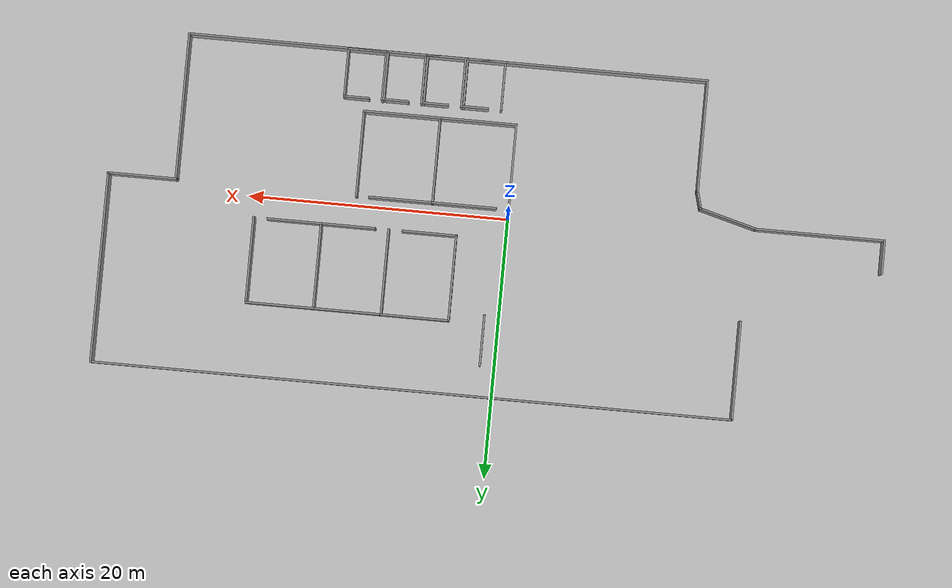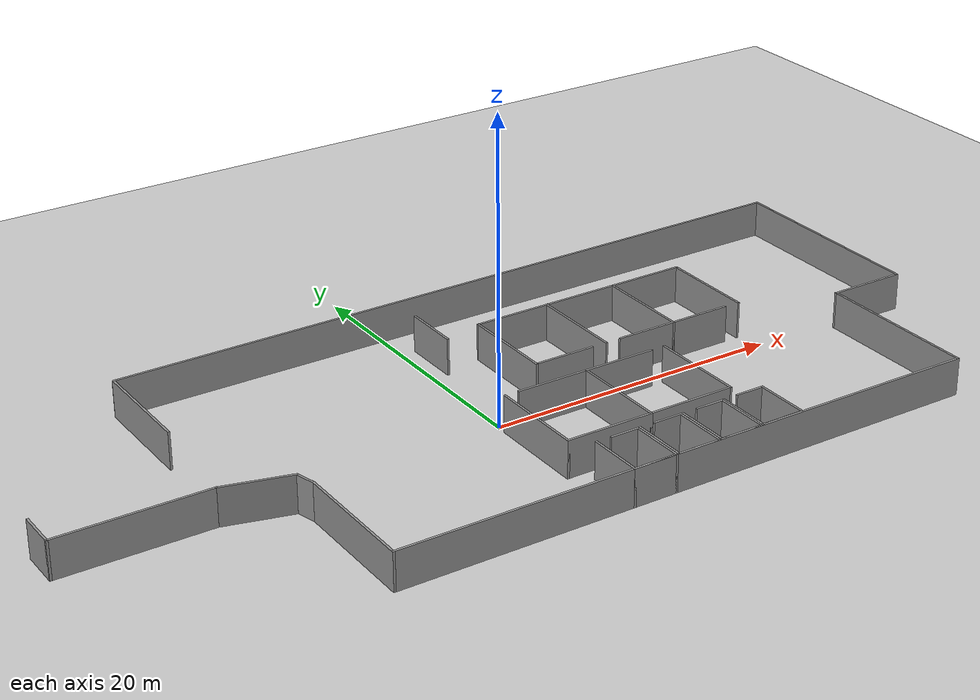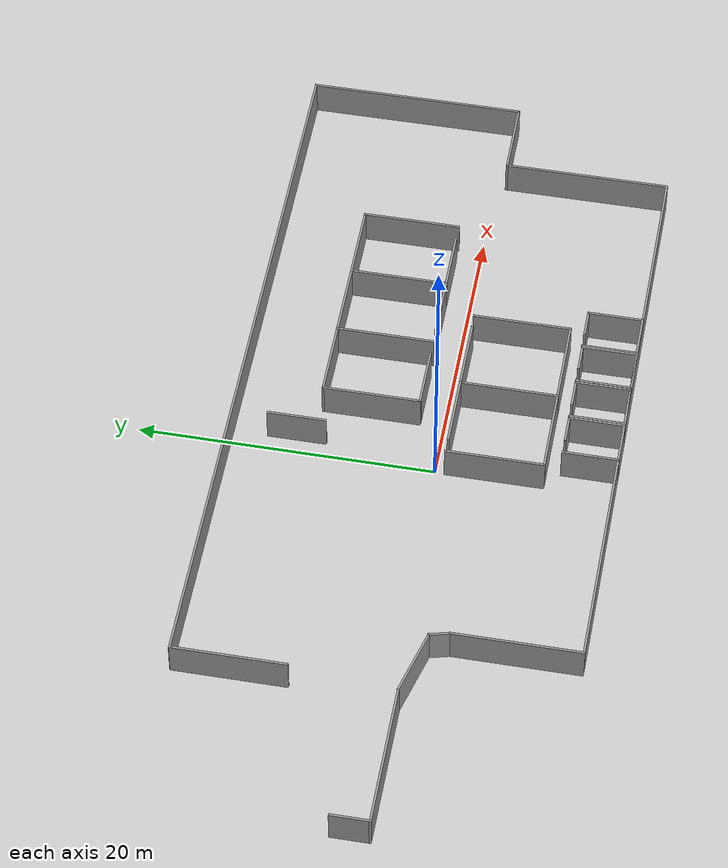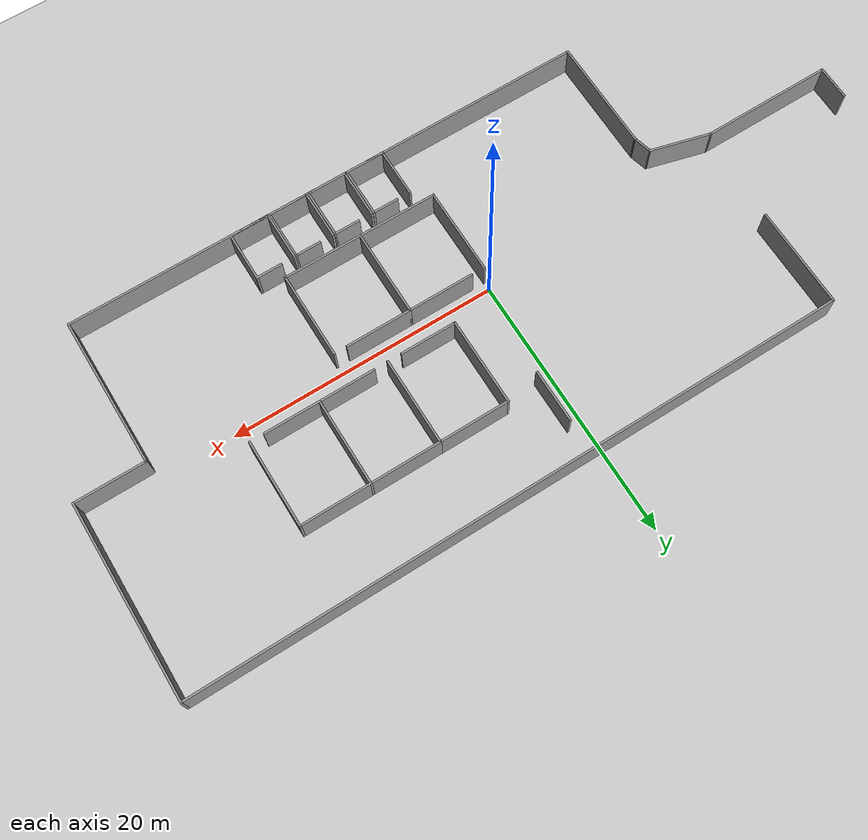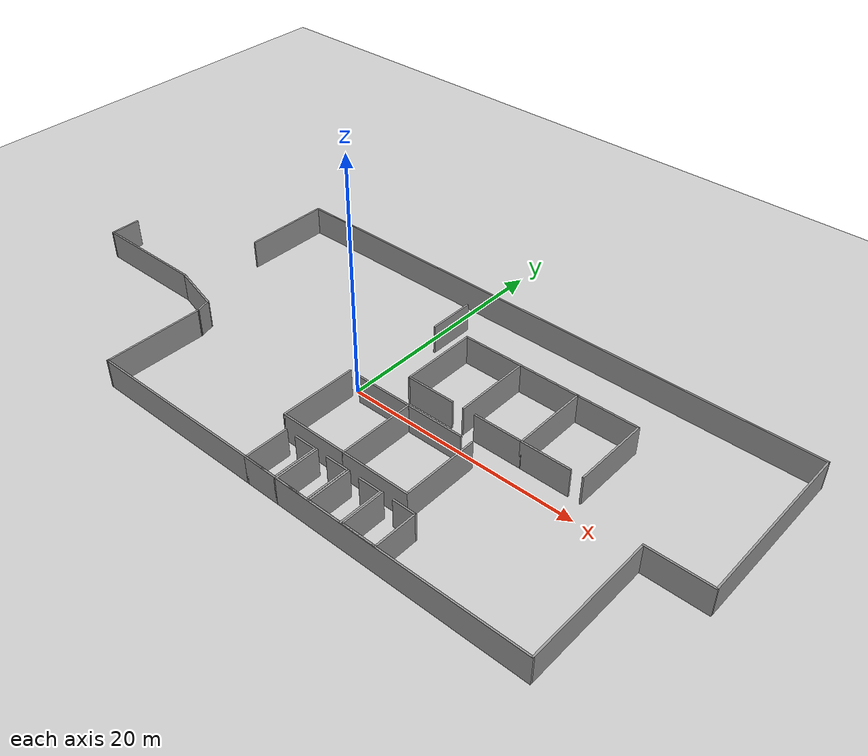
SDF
<sdf version="1.6">
 <world name="default">
  <model name="ground_plane">
   <static>1</static>
   <link name="link">
    <collision name="collision">
     <geometry><plane><normal>0 0 1</normal><size>100 100</size></plane></geometry>
     <surface><friction><ode><mu>100</mu><mu2>50</mu2></ode></friction></surface>
    </collision>
    <visual name="visual">
     <cast_shadows>0</cast_shadows>
     <geometry><plane><normal>0 0 1</normal><size>100 100</size></plane></geometry>
     <material>
      <script><uri>file://media/materials/scripts/gazebo.material</uri><name>Gazebo/Grey</name></script>
     </material>
    </visual>
   </link>
  </model>
  <model name="EEFloor4">
   <link name="Wall_0">
    <pose>-19.3918 9.08232 0 0 -0 1.5708</pose>
    <inertial>
     <inertia><ixx>0</ixx><ixy>0</ixy><ixz>0</ixz><iyy>0</iyy><iyz>0</iyz><izz>0</izz></inertia>
     <mass>0</mass>
    </inertial>
    <visual name="Wall_0_Visual">
     <pose>0 0 1.25 0 -0 0</pose>
     <geometry><box><size>7.65575 0.15 2.5</size></box></geometry>
     <material>
      <script><uri>file://media/materials/scripts/gazebo.material</uri><name>Gazebo/Grey</name></script>
      <ambient>1 1 1 1</ambient>
      <shader type="pixel"/>
     </material>
     <meta><layer>0</layer></meta>
    </visual>
    <collision name="Wall_0_Collision">
     <pose>0 0 1.25 0 -0 0</pose>
     <geometry><box><size>7.65575 0.15 2.5</size></box></geometry>
     <surface>
      <friction>
       <ode><mu>1</mu><mu2>1</mu2><fdir1>0 0 0</fdir1><slip1>0</slip1><slip2>0</slip2></ode>
       <torsional>
        <coefficient>1</coefficient>
        <patch_radius>0</patch_radius>
        <surface_radius>0</surface_radius>
        <use_patch_radius>1</use_patch_radius>
        <ode><slip>0</slip></ode>
       </torsional>
      </friction>
      <bounce><restitution_coefficient>0</restitution_coefficient><threshold>1e+06</threshold></bounce>
      <contact>
       <collide_without_contact>0</collide_without_contact>
       <collide_without_contact_bitmask>1</collide_without_contact_bitmask>
       <collide_bitmask>1</collide_bitmask>
       <ode>
        <soft_cfm>0</soft_cfm>
        <soft_erp>0.2</soft_erp>
        <kp>1e+13</kp>
        <kd>1</kd>
        <max_vel>0.01</max_vel>
        <min_depth>0</min_depth>
       </ode>
       <bullet>
        <split_impulse>1</split_impulse>
        <split_impulse_penetration_threshold>-0.01</split_impulse_penetration_threshold>
        <soft_cfm>0</soft_cfm>
        <soft_erp>0.2</soft_erp>
        <kp>1e+13</kp>
        <kd>1</kd>
       </bullet>
      </contact>
     </surface>
    </collision>
   </link>
   <link name="Wall_1">
    <pose>5.20325 12.852 0 0 -0 0</pose>
    <visual name="Wall_1_Visual">
     <pose>0 0 1.25 0 -0 0</pose>
     <geometry><box><size>49.34 0.15 2.5</size></box></geometry>
     <material>
      <script><uri>file://media/materials/scripts/gazebo.material</uri><name>Gazebo/Grey</name></script>
      <ambient>1 1 1 1</ambient>
      <shader type="pixel"/>
     </material>
     <meta><layer>0</layer></meta>
    </visual>
    <collision name="Wall_1_Collision">
     <pose>0 0 1.25 0 -0 0</pose>
     <geometry><box><size>49.34 0.15 2.5</size></box></geometry>
     <surface>
      <friction>
       <ode><mu>1</mu><mu2>1</mu2><fdir1>0 0 0</fdir1><slip1>0</slip1><slip2>0</slip2></ode>
       <torsional>
        <coefficient>1</coefficient>
        <patch_radius>0</patch_radius>
        <surface_radius>0</surface_radius>
        <use_patch_radius>1</use_patch_radius>
        <ode><slip>0</slip></ode>
       </torsional>
      </friction>
      <bounce><restitution_coefficient>0</restitution_coefficient><threshold>1e+06</threshold></bounce>
      <contact>
       <collide_without_contact>0</collide_without_contact>
       <collide_without_contact_bitmask>1</collide_without_contact_bitmask>
       <collide_bitmask>1</collide_bitmask>
       <ode>
        <soft_cfm>0</soft_cfm>
        <soft_erp>0.2</soft_erp>
        <kp>1e+13</kp>
        <kd>1</kd>
        <max_vel>0.01</max_vel>
        <min_depth>0</min_depth>
       </ode>
       <bullet>
        <split_impulse>1</split_impulse>
        <split_impulse_penetration_threshold>-0.01</split_impulse_penetration_threshold>
        <soft_cfm>0</soft_cfm>
        <soft_erp>0.2</soft_erp>
        <kp>1e+13</kp>
        <kd>1</kd>
       </bullet>
      </contact>
     </surface>
    </collision>
   </link>
   <link name="Wall_10">
    <pose>-29.7982 -0.602414 0 0 -0 1.5708</pose>
    <visual name="Wall_10_Visual">
     <pose>0 0 1.25 0 -0 0</pose>
     <geometry><box><size>2.667 0.15 2.5</size></box></geometry>
     <material>
      <script><uri>file://media/materials/scripts/gazebo.material</uri><name>Gazebo/Grey</name></script>
      <ambient>1 1 1 1</ambient>
      <shader type="pixel"/>
     </material>
     <meta><layer>0</layer></meta>
    </visual>
    <collision name="Wall_10_Collision">
     <pose>0 0 1.25 0 -0 0</pose>
     <geometry><box><size>2.667 0.15 2.5</size></box></geometry>
     <surface>
      <friction>
       <ode><mu>1</mu><mu2>1</mu2><fdir1>0 0 0</fdir1><slip1>0</slip1><slip2>0</slip2></ode>
       <torsional>
        <coefficient>1</coefficient>
        <patch_radius>0</patch_radius>
        <surface_radius>0</surface_radius>
        <use_patch_radius>1</use_patch_radius>
        <ode><slip>0</slip></ode>
       </torsional>
      </friction>
      <bounce><restitution_coefficient>0</restitution_coefficient><threshold>1e+06</threshold></bounce>
      <contact>
       <collide_without_contact>0</collide_without_contact>
       <collide_without_contact_bitmask>1</collide_without_contact_bitmask>
       <collide_bitmask>1</collide_bitmask>
       <ode>
        <soft_cfm>0</soft_cfm>
        <soft_erp>0.2</soft_erp>
        <kp>1e+13</kp>
        <kd>1</kd>
        <max_vel>0.01</max_vel>
        <min_depth>0</min_depth>
       </ode>
       <bullet>
        <split_impulse>1</split_impulse>
        <split_impulse_penetration_threshold>-0.01</split_impulse_penetration_threshold>
        <soft_cfm>0</soft_cfm>
        <soft_erp>0.2</soft_erp>
        <kp>1e+13</kp>
        <kd>1</kd>
       </bullet>
      </contact>
     </surface>
    </collision>
   </link>
   <link name="Wall_2">
    <pose>29.7982 5.5925 0 0 0 -1.5708</pose>
    <visual name="Wall_2_Visual">
     <pose>0 0 1.25 0 -0 0</pose>
     <geometry><box><size>14.669 0.15 2.5</size></box></geometry>
     <material>
      <script><uri>file://media/materials/scripts/gazebo.material</uri><name>Gazebo/Grey</name></script>
      <ambient>1 1 1 1</ambient>
      <shader type="pixel"/>
     </material>
     <meta><layer>0</layer></meta>
    </visual>
    <collision name="Wall_2_Collision">
     <pose>0 0 1.25 0 -0 0</pose>
     <geometry><box><size>14.669 0.15 2.5</size></box></geometry>
     <surface>
      <friction>
       <ode><mu>1</mu><mu2>1</mu2><fdir1>0 0 0</fdir1><slip1>0</slip1><slip2>0</slip2></ode>
       <torsional>
        <coefficient>1</coefficient>
        <patch_radius>0</patch_radius>
        <surface_radius>0</surface_radius>
        <use_patch_radius>1</use_patch_radius>
        <ode><slip>0</slip></ode>
       </torsional>
      </friction>
      <bounce><restitution_coefficient>0</restitution_coefficient><threshold>1e+06</threshold></bounce>
      <contact>
       <collide_without_contact>0</collide_without_contact>
       <collide_without_contact_bitmask>1</collide_without_contact_bitmask>
       <collide_bitmask>1</collide_bitmask>
       <ode>
        <soft_cfm>0</soft_cfm>
        <soft_erp>0.2</soft_erp>
        <kp>1e+13</kp>
        <kd>1</kd>
        <max_vel>0.01</max_vel>
        <min_depth>0</min_depth>
       </ode>
       <bullet>
        <split_impulse>1</split_impulse>
        <split_impulse_penetration_threshold>-0.01</split_impulse_penetration_threshold>
        <soft_cfm>0</soft_cfm>
        <soft_erp>0.2</soft_erp>
        <kp>1e+13</kp>
        <kd>1</kd>
       </bullet>
      </contact>
     </surface>
    </collision>
   </link>
   <link name="Wall_3">
    <pose>27.2062 -1.667 0 0 -0 3.14159</pose>
    <visual name="Wall_3_Visual">
     <pose>0 0 1.25 0 -0 0</pose>
     <geometry><box><size>5.334 0.15 2.5</size></box></geometry>
     <material>
      <script><uri>file://media/materials/scripts/gazebo.material</uri><name>Gazebo/Grey</name></script>
      <ambient>1 1 1 1</ambient>
      <shader type="pixel"/>
     </material>
     <meta><layer>0</layer></meta>
    </visual>
    <collision name="Wall_3_Collision">
     <pose>0 0 1.25 0 -0 0</pose>
     <geometry><box><size>5.334 0.15 2.5</size></box></geometry>
     <surface>
      <friction>
       <ode><mu>1</mu><mu2>1</mu2><fdir1>0 0 0</fdir1><slip1>0</slip1><slip2>0</slip2></ode>
       <torsional>
        <coefficient>1</coefficient>
        <patch_radius>0</patch_radius>
        <surface_radius>0</surface_radius>
        <use_patch_radius>1</use_patch_radius>
        <ode><slip>0</slip></ode>
       </torsional>
      </friction>
      <bounce><restitution_coefficient>0</restitution_coefficient><threshold>1e+06</threshold></bounce>
      <contact>
       <collide_without_contact>0</collide_without_contact>
       <collide_without_contact_bitmask>1</collide_without_contact_bitmask>
       <collide_bitmask>1</collide_bitmask>
       <ode>
        <soft_cfm>0</soft_cfm>
        <soft_erp>0.2</soft_erp>
        <kp>1e+13</kp>
        <kd>1</kd>
        <max_vel>0.01</max_vel>
        <min_depth>0</min_depth>
       </ode>
       <bullet>
        <split_impulse>1</split_impulse>
        <split_impulse_penetration_threshold>-0.01</split_impulse_penetration_threshold>
        <soft_cfm>0</soft_cfm>
        <soft_erp>0.2</soft_erp>
        <kp>1e+13</kp>
        <kd>1</kd>
       </bullet>
      </contact>
     </surface>
    </collision>
   </link>
   <link name="Wall_4">
    <pose>24.6142 -7.2595 0 0 0 -1.5708</pose>
    <visual name="Wall_4_Visual">
     <pose>0 0 1.25 0 -0 0</pose>
     <geometry><box><size>11.335 0.15 2.5</size></box></geometry>
     <material>
      <script><uri>file://media/materials/scripts/gazebo.material</uri><name>Gazebo/Grey</name></script>
      <ambient>1 1 1 1</ambient>
      <shader type="pixel"/>
     </material>
     <meta><layer>0</layer></meta>
    </visual>
    <collision name="Wall_4_Collision">
     <pose>0 0 1.25 0 -0 0</pose>
     <geometry><box><size>11.335 0.15 2.5</size></box></geometry>
     <surface>
      <friction>
       <ode><mu>1</mu><mu2>1</mu2><fdir1>0 0 0</fdir1><slip1>0</slip1><slip2>0</slip2></ode>
       <torsional>
        <coefficient>1</coefficient>
        <patch_radius>0</patch_radius>
        <surface_radius>0</surface_radius>
        <use_patch_radius>1</use_patch_radius>
        <ode><slip>0</slip></ode>
       </torsional>
      </friction>
      <bounce><restitution_coefficient>0</restitution_coefficient><threshold>1e+06</threshold></bounce>
      <contact>
       <collide_without_contact>0</collide_without_contact>
       <collide_without_contact_bitmask>1</collide_without_contact_bitmask>
       <collide_bitmask>1</collide_bitmask>
       <ode>
        <soft_cfm>0</soft_cfm>
        <soft_erp>0.2</soft_erp>
        <kp>1e+13</kp>
        <kd>1</kd>
        <max_vel>0.01</max_vel>
        <min_depth>0</min_depth>
       </ode>
       <bullet>
        <split_impulse>1</split_impulse>
        <split_impulse_penetration_threshold>-0.01</split_impulse_penetration_threshold>
        <soft_cfm>0</soft_cfm>
        <soft_erp>0.2</soft_erp>
        <kp>1e+13</kp>
        <kd>1</kd>
       </bullet>
      </contact>
     </surface>
    </collision>
   </link>
   <link name="Wall_5">
    <pose>4.68925 -12.852 0 0 -0 3.14159</pose>
    <visual name="Wall_5_Visual">
     <pose>0 0 1.25 0 -0 0</pose>
     <geometry><box><size>40 0.15 2.5</size></box></geometry>
     <material>
      <script><uri>file://media/materials/scripts/gazebo.material</uri><name>Gazebo/Grey</name></script>
      <ambient>1 1 1 1</ambient>
      <shader type="pixel"/>
     </material>
     <meta><layer>0</layer></meta>
    </visual>
    <collision name="Wall_5_Collision">
     <pose>0 0 1.25 0 -0 0</pose>
     <geometry><box><size>40 0.15 2.5</size></box></geometry>
     <surface>
      <friction>
       <ode><mu>1</mu><mu2>1</mu2><fdir1>0 0 0</fdir1><slip1>0</slip1><slip2>0</slip2></ode>
       <torsional>
        <coefficient>1</coefficient>
        <patch_radius>0</patch_radius>
        <surface_radius>0</surface_radius>
        <use_patch_radius>1</use_patch_radius>
        <ode><slip>0</slip></ode>
       </torsional>
      </friction>
      <bounce><restitution_coefficient>0</restitution_coefficient><threshold>1e+06</threshold></bounce>
      <contact>
       <collide_without_contact>0</collide_without_contact>
       <collide_without_contact_bitmask>1</collide_without_contact_bitmask>
       <collide_bitmask>1</collide_bitmask>
       <ode>
        <soft_cfm>0</soft_cfm>
        <soft_erp>0.2</soft_erp>
        <kp>1e+13</kp>
        <kd>1</kd>
        <max_vel>0.01</max_vel>
        <min_depth>0</min_depth>
       </ode>
       <bullet>
        <split_impulse>1</split_impulse>
        <split_impulse_penetration_threshold>-0.01</split_impulse_penetration_threshold>
        <soft_cfm>0</soft_cfm>
        <soft_erp>0.2</soft_erp>
        <kp>1e+13</kp>
        <kd>1</kd>
       </bullet>
      </contact>
     </surface>
    </collision>
   </link>
   <link name="Wall_6">
    <pose>-15.2358 -8.593 0 0 -0 1.5708</pose>
    <visual name="Wall_6_Visual">
     <pose>0 0 1.25 0 -0 0</pose>
     <geometry><box><size>8.668 0.15 2.5</size></box></geometry>
     <material>
      <script><uri>file://media/materials/scripts/gazebo.material</uri><name>Gazebo/Grey</name></script>
      <ambient>1 1 1 1</ambient>
      <shader type="pixel"/>
     </material>
     <meta><layer>0</layer></meta>
    </visual>
    <collision name="Wall_6_Collision">
     <pose>0 0 1.25 0 -0 0</pose>
     <geometry><box><size>8.668 0.15 2.5</size></box></geometry>
     <surface>
      <friction>
       <ode><mu>1</mu><mu2>1</mu2><fdir1>0 0 0</fdir1><slip1>0</slip1><slip2>0</slip2></ode>
       <torsional>
        <coefficient>1</coefficient>
        <patch_radius>0</patch_radius>
        <surface_radius>0</surface_radius>
        <use_patch_radius>1</use_patch_radius>
        <ode><slip>0</slip></ode>
       </torsional>
      </friction>
      <bounce><restitution_coefficient>0</restitution_coefficient><threshold>1e+06</threshold></bounce>
      <contact>
       <collide_without_contact>0</collide_without_contact>
       <collide_without_contact_bitmask>1</collide_without_contact_bitmask>
       <collide_bitmask>1</collide_bitmask>
       <ode>
        <soft_cfm>0</soft_cfm>
        <soft_erp>0.2</soft_erp>
        <kp>1e+13</kp>
        <kd>1</kd>
        <max_vel>0.01</max_vel>
        <min_depth>0</min_depth>
       </ode>
       <bullet>
        <split_impulse>1</split_impulse>
        <split_impulse_penetration_threshold>-0.01</split_impulse_penetration_threshold>
        <soft_cfm>0</soft_cfm>
        <soft_erp>0.2</soft_erp>
        <kp>1e+13</kp>
        <kd>1</kd>
       </bullet>
      </contact>
     </surface>
    </collision>
   </link>
   <link name="Wall_7">
    <pose>-15.4105 -3.682 0 0 -0 1.8326</pose>
    <visual name="Wall_7_Visual">
     <pose>0 0 1.25 0 -0 0</pose>
     <geometry><box><size>1.5 0.15 2.5</size></box></geometry>
     <material>
      <script><uri>file://media/materials/scripts/gazebo.material</uri><name>Gazebo/Grey</name></script>
      <ambient>1 1 1 1</ambient>
      <shader type="pixel"/>
     </material>
     <meta><layer>0</layer></meta>
    </visual>
    <collision name="Wall_7_Collision">
     <pose>0 0 1.25 0 -0 0</pose>
     <geometry><box><size>1.5 0.15 2.5</size></box></geometry>
     <surface>
      <friction>
       <ode><mu>1</mu><mu2>1</mu2><fdir1>0 0 0</fdir1><slip1>0</slip1><slip2>0</slip2></ode>
       <torsional>
        <coefficient>1</coefficient>
        <patch_radius>0</patch_radius>
        <surface_radius>0</surface_radius>
        <use_patch_radius>1</use_patch_radius>
        <ode><slip>0</slip></ode>
       </torsional>
      </friction>
      <bounce><restitution_coefficient>0</restitution_coefficient><threshold>1e+06</threshold></bounce>
      <contact>
       <collide_without_contact>0</collide_without_contact>
       <collide_without_contact_bitmask>1</collide_without_contact_bitmask>
       <collide_bitmask>1</collide_bitmask>
       <ode>
        <soft_cfm>0</soft_cfm>
        <soft_erp>0.2</soft_erp>
        <kp>1e+13</kp>
        <kd>1</kd>
        <max_vel>0.01</max_vel>
        <min_depth>0</min_depth>
       </ode>
       <bullet>
        <split_impulse>1</split_impulse>
        <split_impulse_penetration_threshold>-0.01</split_impulse_penetration_threshold>
        <soft_cfm>0</soft_cfm>
        <soft_erp>0.2</soft_erp>
        <kp>1e+13</kp>
        <kd>1</kd>
       </bullet>
      </contact>
     </surface>
    </collision>
   </link>
   <link name="Wall_8">
    <pose>-17.7667 -2.44546 0 0 -0 2.87979</pose>
    <visual name="Wall_8_Visual">
     <pose>0 0 1.25 0 -0 0</pose>
     <geometry><box><size>4.667 0.15 2.5</size></box></geometry>
     <material>
      <script><uri>file://media/materials/scripts/gazebo.material</uri><name>Gazebo/Grey</name></script>
      <ambient>1 1 1 1</ambient>
      <shader type="pixel"/>
     </material>
     <meta><layer>0</layer></meta>
    </visual>
    <collision name="Wall_8_Collision">
     <pose>0 0 1.25 0 -0 0</pose>
     <geometry><box><size>4.667 0.15 2.5</size></box></geometry>
     <surface>
      <friction>
       <ode><mu>1</mu><mu2>1</mu2><fdir1>0 0 0</fdir1><slip1>0</slip1><slip2>0</slip2></ode>
       <torsional>
        <coefficient>1</coefficient>
        <patch_radius>0</patch_radius>
        <surface_radius>0</surface_radius>
        <use_patch_radius>1</use_patch_radius>
        <ode><slip>0</slip></ode>
       </torsional>
      </friction>
      <bounce><restitution_coefficient>0</restitution_coefficient><threshold>1e+06</threshold></bounce>
      <contact>
       <collide_without_contact>0</collide_without_contact>
       <collide_without_contact_bitmask>1</collide_without_contact_bitmask>
       <collide_bitmask>1</collide_bitmask>
       <ode>
        <soft_cfm>0</soft_cfm>
        <soft_erp>0.2</soft_erp>
        <kp>1e+13</kp>
        <kd>1</kd>
        <max_vel>0.01</max_vel>
        <min_depth>0</min_depth>
       </ode>
       <bullet>
        <split_impulse>1</split_impulse>
        <split_impulse_penetration_threshold>-0.01</split_impulse_penetration_threshold>
        <soft_cfm>0</soft_cfm>
        <soft_erp>0.2</soft_erp>
        <kp>1e+13</kp>
        <kd>1</kd>
       </bullet>
      </contact>
     </surface>
    </collision>
   </link>
   <link name="Wall_9">
    <pose>-24.8732 -1.86091 0 0 -0 3.14159</pose>
    <visual name="Wall_9_Visual">
     <pose>0 0 1.25 0 -0 0</pose>
     <geometry><box><size>10 0.15 2.5</size></box></geometry>
     <material>
      <script><uri>file://media/materials/scripts/gazebo.material</uri><name>Gazebo/Grey</name></script>
      <ambient>1 1 1 1</ambient>
      <shader type="pixel"/>
     </material>
     <meta><layer>0</layer></meta>
    </visual>
    <collision name="Wall_9_Collision">
     <pose>0 0 1.25 0 -0 0</pose>
     <geometry><box><size>10 0.15 2.5</size></box></geometry>
     <surface>
      <friction>
       <ode><mu>1</mu><mu2>1</mu2><fdir1>0 0 0</fdir1><slip1>0</slip1><slip2>0</slip2></ode>
       <torsional>
        <coefficient>1</coefficient>
        <patch_radius>0</patch_radius>
        <surface_radius>0</surface_radius>
        <use_patch_radius>1</use_patch_radius>
        <ode><slip>0</slip></ode>
       </torsional>
      </friction>
      <bounce><restitution_coefficient>0</restitution_coefficient><threshold>1e+06</threshold></bounce>
      <contact>
       <collide_without_contact>0</collide_without_contact>
       <collide_without_contact_bitmask>1</collide_without_contact_bitmask>
       <collide_bitmask>1</collide_bitmask>
       <ode>
        <soft_cfm>0</soft_cfm>
        <soft_erp>0.2</soft_erp>
        <kp>1e+13</kp>
        <kd>1</kd>
        <max_vel>0.01</max_vel>
        <min_depth>0</min_depth>
       </ode>
       <bullet>
        <split_impulse>1</split_impulse>
        <split_impulse_penetration_threshold>-0.01</split_impulse_penetration_threshold>
        <soft_cfm>0</soft_cfm>
        <soft_erp>0.2</soft_erp>
        <kp>1e+13</kp>
        <kd>1</kd>
       </bullet>
      </contact>
     </surface>
    </collision>
   </link>
   <static>1</static>
   <pose>0.943488 0.961401 0 0 -0 0</pose>
  </model>
  <model name="410">
   <pose>11.578 4.95207 0 0 -0 0</pose>
   <link name="Wall_20">
    <collision name="Wall_20_Collision">
     <geometry><box><size>6.668 0.15 2.5</size></box></geometry>
     <pose>0 0 1.25 0 -0 0</pose>
    </collision>
    <visual name="Wall_20_Visual">
     <pose>0 0 1.25 0 -0 0</pose>
     <geometry><box><size>6.668 0.15 2.5</size></box></geometry>
     <material>
      <script><uri>file://media/materials/scripts/gazebo.material</uri><name>Gazebo/Grey</name></script>
      <ambient>1 1 1 1</ambient>
     </material>
     <meta><layer>0</layer></meta>
    </visual>
    <pose>-2.592 0 0 0 -0 1.5708</pose>
   </link>
   <link name="Wall_21">
    <collision name="Wall_21_Collision">
     <geometry><box><size>5.334 0.15 2.5</size></box></geometry>
     <pose>0 0 1.25 0 -0 0</pose>
    </collision>
    <visual name="Wall_21_Visual">
     <pose>0 0 1.25 0 -0 0</pose>
     <geometry><box><size>5.334 0.15 2.5</size></box></geometry>
     <material>
      <script><uri>file://media/materials/scripts/gazebo.material</uri><name>Gazebo/Grey</name></script>
      <ambient>1 1 1 1</ambient>
     </material>
     <meta><layer>0</layer></meta>
    </visual>
    <pose>-5.184 3.259 0 0 -0 3.14159</pose>
   </link>
   <link name="Wall_22">
    <collision name="Wall_22_Collision">
     <geometry><box><size>6.66854 0.15 2.5</size></box></geometry>
     <pose>0 0 1.25 0 -0 0</pose>
    </collision>
    <visual name="Wall_22_Visual">
     <pose>0 0 1.25 0 -0 0</pose>
     <geometry><box><size>6.66854 0.15 2.5</size></box></geometry>
     <material>
      <script><uri>file://media/materials/scripts/gazebo.material</uri><name>Gazebo/Grey</name></script>
      <ambient>1 1 1 1</ambient>
     </material>
     <meta><layer>0</layer></meta>
    </visual>
    <pose>-7.776 0 0 0 -0 -1.5708</pose>
   </link>
   <link name="Wall_24">
    <collision name="Wall_24_Collision">
     <geometry><box><size>5.334 0.15 2.5</size></box></geometry>
     <pose>0 0 1.25 0 -0 0</pose>
    </collision>
    <visual name="Wall_24_Visual">
     <pose>0 0 1.25 0 -0 0</pose>
     <geometry><box><size>5.334 0.15 2.5</size></box></geometry>
     <material>
      <script><uri>file://media/materials/scripts/gazebo.material</uri><name>Gazebo/Grey</name></script>
      <ambient>1 1 1 1</ambient>
     </material>
     <meta><layer>0</layer></meta>
    </visual>
    <pose>-0 3.259 0 0 -0 0</pose>
   </link>
   <link name="Wall_25">
    <collision name="Wall_25_Collision">
     <geometry><box><size>6.668 0.15 2.5</size></box></geometry>
     <pose>0 0 1.25 0 -0 0</pose>
    </collision>
    <visual name="Wall_25_Visual">
     <pose>0 0 1.25 0 -0 0</pose>
     <geometry><box><size>6.668 0.15 2.5</size></box></geometry>
     <material>
      <script><uri>file://media/materials/scripts/gazebo.material</uri><name>Gazebo/Grey</name></script>
      <ambient>1 1 1 1</ambient>
     </material>
     <meta><layer>0</layer></meta>
    </visual>
    <pose>2.592 0 0 0 -0 -1.5708</pose>
   </link>
   <link name="Wall_28">
    <collision name="Wall_28_Collision">
     <geometry><box><size>5.334 0.15 2.5</size></box></geometry>
     <pose>0 0 1.25 0 -0 0</pose>
    </collision>
    <visual name="Wall_28_Visual">
     <pose>0 0 1.25 0 -0 0</pose>
     <geometry><box><size>5.334 0.15 2.5</size></box></geometry>
     <material>
      <script><uri>file://media/materials/scripts/gazebo.material</uri><name>Gazebo/Grey</name></script>
      <ambient>1 1 1 1</ambient>
     </material>
     <meta><layer>0</layer></meta>
    </visual>
    <pose>5.184 3.259 0 0 -0 0</pose>
   </link>
   <link name="Wall_29">
    <collision name="Wall_29_Collision">
     <geometry><box><size>6.668 0.15 2.5</size></box></geometry>
     <pose>0 0 1.25 0 -0 0</pose>
    </collision>
    <visual name="Wall_29_Visual">
     <pose>0 0 1.25 0 -0 0</pose>
     <geometry><box><size>6.668 0.15 2.5</size></box></geometry>
     <material>
      <script><uri>file://media/materials/scripts/gazebo.material</uri><name>Gazebo/Grey</name></script>
      <ambient>1 1 1 1</ambient>
     </material>
     <meta><layer>0</layer></meta>
    </visual>
    <pose>7.776 0 0 0 -0 -1.5708</pose>
   </link>
   <link name="Wall_32">
    <collision name="Wall_32_Collision">
     <geometry><box><size>4.25 0.15 2.5</size></box></geometry>
     <pose>0 0 1.25 0 -0 0</pose>
    </collision>
    <visual name="Wall_32_Visual">
     <pose>0 0 1.25 0 -0 0</pose>
     <geometry><box><size>4.25 0.15 2.5</size></box></geometry>
     <material>
      <script><uri>file://media/materials/scripts/gazebo.material</uri><name>Gazebo/Grey</name></script>
      <ambient>1 1 1 1</ambient>
     </material>
     <meta><layer>0</layer></meta>
    </visual>
    <pose>-5.726 -3.259 0 0 -0 0</pose>
   </link>
   <link name="Wall_35">
    <collision name="Wall_35_Collision">
     <geometry><box><size>4.25 0.15 2.5</size></box></geometry>
     <pose>0 0 1.25 0 -0 0</pose>
    </collision>
    <visual name="Wall_35_Visual">
     <pose>0 0 1.25 0 -0 0</pose>
     <geometry><box><size>4.25 0.15 2.5</size></box></geometry>
     <material>
      <script><uri>file://media/materials/scripts/gazebo.material</uri><name>Gazebo/Grey</name></script>
      <ambient>1 1 1 1</ambient>
     </material>
     <meta><layer>0</layer></meta>
    </visual>
    <pose>0.542 -3.259 0 0 -0 0</pose>
   </link>
   <link name="Wall_36">
    <collision name="Wall_36_Collision">
     <geometry><box><size>4.25 0.15 2.5</size></box></geometry>
     <pose>0 0 1.25 0 -0 0</pose>
    </collision>
    <visual name="Wall_36_Visual">
     <pose>0 0 1.25 0 -0 0</pose>
     <geometry><box><size>4.25 0.15 2.5</size></box></geometry>
     <material>
      <script><uri>file://media/materials/scripts/gazebo.material</uri><name>Gazebo/Grey</name></script>
      <ambient>1 1 1 1</ambient>
     </material>
     <meta><layer>0</layer></meta>
    </visual>
    <pose>4.642 -3.259 0 0 -0 0</pose>
   </link>
   <static>1</static>
  </model>
  <model name="4m_wall_1">
   <link name="Wall_0">
    <pose>0 0 0 0 -0 1.5708</pose>
    <visual name="Wall_0_Visual">
     <pose>0 0 1.25 0 -0 0</pose>
     <geometry><box><size>4 0.15 2.5</size></box></geometry>
     <material>
      <script><uri>file://media/materials/scripts/gazebo.material</uri><name>Gazebo/Grey</name></script>
      <ambient>1 1 1 1</ambient>
      <shader type="pixel"/>
     </material>
     <meta><layer>0</layer></meta>
    </visual>
    <collision name="Wall_0_Collision">
     <pose>0 0 1.25 0 -0 0</pose>
     <geometry><box><size>4 0.15 2.5</size></box></geometry>
     <surface>
      <friction>
       <ode><mu>1</mu><mu2>1</mu2><fdir1>0 0 0</fdir1><slip1>0</slip1><slip2>0</slip2></ode>
       <torsional>
        <coefficient>1</coefficient>
        <patch_radius>0</patch_radius>
        <surface_radius>0</surface_radius>
        <use_patch_radius>1</use_patch_radius>
        <ode><slip>0</slip></ode>
       </torsional>
      </friction>
      <bounce><restitution_coefficient>0</restitution_coefficient><threshold>1e+06</threshold></bounce>
      <contact>
       <collide_without_contact>0</collide_without_contact>
       <collide_without_contact_bitmask>1</collide_without_contact_bitmask>
       <collide_bitmask>1</collide_bitmask>
       <ode>
        <soft_cfm>0</soft_cfm>
        <soft_erp>0.2</soft_erp>
        <kp>1e+13</kp>
        <kd>1</kd>
        <max_vel>0.01</max_vel>
        <min_depth>0</min_depth>
       </ode>
       <bullet>
        <split_impulse>1</split_impulse>
        <split_impulse_penetration_threshold>-0.01</split_impulse_penetration_threshold>
        <soft_cfm>0</soft_cfm>
        <soft_erp>0.2</soft_erp>
        <kp>1e+13</kp>
        <kd>1</kd>
       </bullet>
      </contact>
     </surface>
    </collision>
   </link>
   <static>1</static>
   <pose>1.10281 9.47993 0 0 -0 0</pose>
  </model>
  <model name="408">
   <pose>5.84138 -3.93251 0 0 -0 0</pose>
   <link name="Wall_68">
    <collision name="Wall_68_Collision">
     <geometry><box><size>6 0.15 2.5</size></box></geometry>
     <pose>0 0 1.25 0 -0 0</pose>
    </collision>
    <visual name="Wall_68_Visual">
     <pose>0 0 1.25 0 -0 0</pose>
     <geometry><box><size>6 0.15 2.5</size></box></geometry>
     <material>
      <script><uri>file://media/materials/scripts/gazebo.material</uri><name>Gazebo/Grey</name></script>
      <ambient>1 1 1 1</ambient>
     </material>
     <meta><layer>0</layer></meta>
    </visual>
    <pose>-2.925 -3.259 0 0 -0 0</pose>
   </link>
   <link name="Wall_69">
    <collision name="Wall_69_Collision">
     <geometry><box><size>6.668 0.15 2.5</size></box></geometry>
     <pose>0 0 1.25 0 -0 0</pose>
    </collision>
    <visual name="Wall_69_Visual">
     <pose>0 0 1.25 0 -0 0</pose>
     <geometry><box><size>6.668 0.15 2.5</size></box></geometry>
     <material>
      <script><uri>file://media/materials/scripts/gazebo.material</uri><name>Gazebo/Grey</name></script>
      <ambient>1 1 1 1</ambient>
     </material>
     <meta><layer>0</layer></meta>
    </visual>
    <pose>0 0 0 0 -0 1.5708</pose>
   </link>
   <link name="Wall_71">
    <collision name="Wall_71_Collision">
     <geometry><box><size>6.668 0.15 2.5</size></box></geometry>
     <pose>0 0 1.25 0 -0 0</pose>
    </collision>
    <visual name="Wall_71_Visual">
     <pose>0 0 1.25 0 -0 0</pose>
     <geometry><box><size>6.668 0.15 2.5</size></box></geometry>
     <material>
      <script><uri>file://media/materials/scripts/gazebo.material</uri><name>Gazebo/Grey</name></script>
      <ambient>1 1 1 1</ambient>
     </material>
     <meta><layer>0</layer></meta>
    </visual>
    <pose>-5.85 0 0 0 -0 -1.5708</pose>
   </link>
   <link name="Wall_73">
    <collision name="Wall_73_Collision">
     <geometry><box><size>6 0.15 2.5</size></box></geometry>
     <pose>0 0 1.25 0 -0 0</pose>
    </collision>
    <visual name="Wall_73_Visual">
     <pose>0 0 1.25 0 -0 0</pose>
     <geometry><box><size>6 0.15 2.5</size></box></geometry>
     <material>
      <script><uri>file://media/materials/scripts/gazebo.material</uri><name>Gazebo/Grey</name></script>
      <ambient>1 1 1 1</ambient>
     </material>
     <meta><layer>0</layer></meta>
    </visual>
    <pose>2.925 -3.259 0 0 -0 0</pose>
   </link>
   <link name="Wall_74">
    <collision name="Wall_74_Collision">
     <geometry><box><size>6.668 0.15 2.5</size></box></geometry>
     <pose>0 0 1.25 0 -0 0</pose>
    </collision>
    <visual name="Wall_74_Visual">
     <pose>0 0 1.25 0 -0 0</pose>
     <geometry><box><size>6.668 0.15 2.5</size></box></geometry>
     <material>
      <script><uri>file://media/materials/scripts/gazebo.material</uri><name>Gazebo/Grey</name></script>
      <ambient>1 1 1 1</ambient>
     </material>
     <meta><layer>0</layer></meta>
    </visual>
    <pose>5.85 0 0 0 -0 1.5708</pose>
   </link>
   <link name="Wall_77">
    <collision name="Wall_77_Collision">
     <geometry><box><size>5 0.15 2.5</size></box></geometry>
     <pose>0 0 1.25 0 -0 0</pose>
    </collision>
    <visual name="Wall_77_Visual">
     <pose>0 0 1.25 0 -0 0</pose>
     <geometry><box><size>5 0.15 2.5</size></box></geometry>
     <material>
      <script><uri>file://media/materials/scripts/gazebo.material</uri><name>Gazebo/Grey</name></script>
      <ambient>1 1 1 1</ambient>
     </material>
     <meta><layer>0</layer></meta>
    </visual>
    <pose>2.425 3.259 0 0 -0 0</pose>
   </link>
   <link name="Wall_79">
    <collision name="Wall_79_Collision">
     <geometry><box><size>5 0.15 2.5</size></box></geometry>
     <pose>0 0 1.25 0 -0 0</pose>
    </collision>
    <visual name="Wall_79_Visual">
     <pose>0 0 1.25 0 -0 0</pose>
     <geometry><box><size>5 0.15 2.5</size></box></geometry>
     <material>
      <script><uri>file://media/materials/scripts/gazebo.material</uri><name>Gazebo/Grey</name></script>
      <ambient>1 1 1 1</ambient>
     </material>
     <meta><layer>0</layer></meta>
    </visual>
    <pose>-2.425 3.259 0 0 -0 3.14159</pose>
   </link>
   <static>1</static>
  </model>
  <model name="329_3">
   <pose>11.8544 -10.0226 0 0 -0 0</pose>
   <link name="Wall_0">
    <collision name="Wall_0_Collision">
     <geometry><box><size>3.81 0.15 2.5</size></box></geometry>
     <pose>0 0 1.25 0 -0 0</pose>
    </collision>
    <visual name="Wall_0_Visual">
     <pose>0 0 1.25 0 -0 0</pose>
     <geometry><box><size>3.81 0.15 2.5</size></box></geometry>
     <material>
      <script><uri>file://media/materials/scripts/gazebo.material</uri><name>Gazebo/Grey</name></script>
      <ambient>1 1 1 1</ambient>
     </material>
     <meta><layer>0</layer></meta>
    </visual>
    <pose>-1.449 0 0 0 -0 -1.5708</pose>
   </link>
   <link name="Wall_1">
    <collision name="Wall_1_Collision">
     <geometry><box><size>3.048 0.15 2.5</size></box></geometry>
     <pose>0 0 1.25 0 -0 0</pose>
    </collision>
    <visual name="Wall_1_Visual">
     <pose>0 0 1.25 0 -0 0</pose>
     <geometry><box><size>3.048 0.15 2.5</size></box></geometry>
     <material>
      <script><uri>file://media/materials/scripts/gazebo.material</uri><name>Gazebo/Grey</name></script>
      <ambient>1 1 1 1</ambient>
     </material>
     <meta><layer>0</layer></meta>
    </visual>
    <pose>-0 -1.83 0 0 -0 0</pose>
   </link>
   <link name="Wall_2">
    <collision name="Wall_2_Collision">
     <geometry><box><size>3.81 0.15 2.5</size></box></geometry>
     <pose>0 0 1.25 0 -0 0</pose>
    </collision>
    <visual name="Wall_2_Visual">
     <pose>0 0 1.25 0 -0 0</pose>
     <geometry><box><size>3.81 0.15 2.5</size></box></geometry>
     <material>
      <script><uri>file://media/materials/scripts/gazebo.material</uri><name>Gazebo/Grey</name></script>
      <ambient>1 1 1 1</ambient>
     </material>
     <meta><layer>0</layer></meta>
    </visual>
    <pose>1.449 0 0 0 -0 1.5708</pose>
   </link>
   <link name="Wall_5">
    <collision name="Wall_5_Collision">
     <geometry><box><size>2 0.15 2.5</size></box></geometry>
     <pose>0 0 1.25 0 -0 0</pose>
    </collision>
    <visual name="Wall_5_Visual">
     <pose>0 0 1.25 0 -0 0</pose>
     <geometry><box><size>2 0.15 2.5</size></box></geometry>
     <material>
      <script><uri>file://media/materials/scripts/gazebo.material</uri><name>Gazebo/Grey</name></script>
      <ambient>1 1 1 1</ambient>
     </material>
     <meta><layer>0</layer></meta>
    </visual>
    <pose>0.524 1.83 0 0 -0 3.14159</pose>
   </link>
   <static>1</static>
  </model>
  <model name="329_4">
   <pose>8.82648 -10.0537 0 0 -0 0</pose>
   <link name="Wall_0">
    <collision name="Wall_0_Collision">
     <geometry><box><size>3.81 0.15 2.5</size></box></geometry>
     <pose>0 0 1.25 0 -0 0</pose>
    </collision>
    <visual name="Wall_0_Visual">
     <pose>0 0 1.25 0 -0 0</pose>
     <geometry><box><size>3.81 0.15 2.5</size></box></geometry>
     <material>
      <script><uri>file://media/materials/scripts/gazebo.material</uri><name>Gazebo/Grey</name></script>
      <ambient>1 1 1 1</ambient>
     </material>
     <meta><layer>0</layer></meta>
    </visual>
    <pose>-1.449 0 0 0 -0 -1.5708</pose>
   </link>
   <link name="Wall_1">
    <collision name="Wall_1_Collision">
     <geometry><box><size>3.048 0.15 2.5</size></box></geometry>
     <pose>0 0 1.25 0 -0 0</pose>
    </collision>
    <visual name="Wall_1_Visual">
     <pose>0 0 1.25 0 -0 0</pose>
     <geometry><box><size>3.048 0.15 2.5</size></box></geometry>
     <material>
      <script><uri>file://media/materials/scripts/gazebo.material</uri><name>Gazebo/Grey</name></script>
      <ambient>1 1 1 1</ambient>
     </material>
     <meta><layer>0</layer></meta>
    </visual>
    <pose>-0 -1.83 0 0 -0 0</pose>
   </link>
   <link name="Wall_2">
    <collision name="Wall_2_Collision">
     <geometry><box><size>3.81 0.15 2.5</size></box></geometry>
     <pose>0 0 1.25 0 -0 0</pose>
    </collision>
    <visual name="Wall_2_Visual">
     <pose>0 0 1.25 0 -0 0</pose>
     <geometry><box><size>3.81 0.15 2.5</size></box></geometry>
     <material>
      <script><uri>file://media/materials/scripts/gazebo.material</uri><name>Gazebo/Grey</name></script>
      <ambient>1 1 1 1</ambient>
     </material>
     <meta><layer>0</layer></meta>
    </visual>
    <pose>1.449 0 0 0 -0 1.5708</pose>
   </link>
   <link name="Wall_5">
    <collision name="Wall_5_Collision">
     <geometry><box><size>2 0.15 2.5</size></box></geometry>
     <pose>0 0 1.25 0 -0 0</pose>
    </collision>
    <visual name="Wall_5_Visual">
     <pose>0 0 1.25 0 -0 0</pose>
     <geometry><box><size>2 0.15 2.5</size></box></geometry>
     <material>
      <script><uri>file://media/materials/scripts/gazebo.material</uri><name>Gazebo/Grey</name></script>
      <ambient>1 1 1 1</ambient>
     </material>
     <meta><layer>0</layer></meta>
    </visual>
    <pose>0.524 1.83 0 0 -0 3.14159</pose>
   </link>
   <static>1</static>
  </model>
  <model name="329_5">
   <pose>5.75965 -10.0575 0 0 -0 0</pose>
   <link name="Wall_0">
    <collision name="Wall_0_Collision">
     <geometry><box><size>3.81 0.15 2.5</size></box></geometry>
     <pose>0 0 1.25 0 -0 0</pose>
    </collision>
    <visual name="Wall_0_Visual">
     <pose>0 0 1.25 0 -0 0</pose>
     <geometry><box><size>3.81 0.15 2.5</size></box></geometry>
     <material>
      <script><uri>file://media/materials/scripts/gazebo.material</uri><name>Gazebo/Grey</name></script>
      <ambient>1 1 1 1</ambient>
     </material>
     <meta><layer>0</layer></meta>
    </visual>
    <pose>-1.449 0 0 0 -0 -1.5708</pose>
   </link>
   <link name="Wall_1">
    <collision name="Wall_1_Collision">
     <geometry><box><size>3.048 0.15 2.5</size></box></geometry>
     <pose>0 0 1.25 0 -0 0</pose>
    </collision>
    <visual name="Wall_1_Visual">
     <pose>0 0 1.25 0 -0 0</pose>
     <geometry><box><size>3.048 0.15 2.5</size></box></geometry>
     <material>
      <script><uri>file://media/materials/scripts/gazebo.material</uri><name>Gazebo/Grey</name></script>
      <ambient>1 1 1 1</ambient>
     </material>
     <meta><layer>0</layer></meta>
    </visual>
    <pose>-0 -1.83 0 0 -0 0</pose>
   </link>
   <link name="Wall_2">
    <collision name="Wall_2_Collision">
     <geometry><box><size>3.81 0.15 2.5</size></box></geometry>
     <pose>0 0 1.25 0 -0 0</pose>
    </collision>
    <visual name="Wall_2_Visual">
     <pose>0 0 1.25 0 -0 0</pose>
     <geometry><box><size>3.81 0.15 2.5</size></box></geometry>
     <material>
      <script><uri>file://media/materials/scripts/gazebo.material</uri><name>Gazebo/Grey</name></script>
      <ambient>1 1 1 1</ambient>
     </material>
     <meta><layer>0</layer></meta>
    </visual>
    <pose>1.449 0 0 0 -0 1.5708</pose>
   </link>
   <link name="Wall_5">
    <collision name="Wall_5_Collision">
     <geometry><box><size>2 0.15 2.5</size></box></geometry>
     <pose>0 0 1.25 0 -0 0</pose>
    </collision>
    <visual name="Wall_5_Visual">
     <pose>0 0 1.25 0 -0 0</pose>
     <geometry><box><size>2 0.15 2.5</size></box></geometry>
     <material>
      <script><uri>file://media/materials/scripts/gazebo.material</uri><name>Gazebo/Grey</name></script>
      <ambient>1 1 1 1</ambient>
     </material>
     <meta><layer>0</layer></meta>
    </visual>
    <pose>0.524 1.83 0 0 -0 3.14159</pose>
   </link>
   <static>1</static>
  </model>
  <model name="329_6">
   <pose>2.69873 -10.0614 0 0 -0 0</pose>
   <link name="Wall_0">
    <collision name="Wall_0_Collision">
     <geometry><box><size>3.81 0.15 2.5</size></box></geometry>
     <pose>0 0 1.25 0 -0 0</pose>
    </collision>
    <visual name="Wall_0_Visual">
     <pose>0 0 1.25 0 -0 0</pose>
     <geometry><box><size>3.81 0.15 2.5</size></box></geometry>
     <material>
      <script><uri>file://media/materials/scripts/gazebo.material</uri><name>Gazebo/Grey</name></script>
      <ambient>1 1 1 1</ambient>
     </material>
     <meta><layer>0</layer></meta>
    </visual>
    <pose>-1.449 0 0 0 -0 -1.5708</pose>
   </link>
   <link name="Wall_1">
    <collision name="Wall_1_Collision">
     <geometry><box><size>3.048 0.15 2.5</size></box></geometry>
     <pose>0 0 1.25 0 -0 0</pose>
    </collision>
    <visual name="Wall_1_Visual">
     <pose>0 0 1.25 0 -0 0</pose>
     <geometry><box><size>3.048 0.15 2.5</size></box></geometry>
     <material>
      <script><uri>file://media/materials/scripts/gazebo.material</uri><name>Gazebo/Grey</name></script>
      <ambient>1 1 1 1</ambient>
     </material>
     <meta><layer>0</layer></meta>
    </visual>
    <pose>-0 -1.83 0 0 -0 0</pose>
   </link>
   <link name="Wall_2">
    <collision name="Wall_2_Collision">
     <geometry><box><size>3.81 0.15 2.5</size></box></geometry>
     <pose>0 0 1.25 0 -0 0</pose>
    </collision>
    <visual name="Wall_2_Visual">
     <pose>0 0 1.25 0 -0 0</pose>
     <geometry><box><size>3.81 0.15 2.5</size></box></geometry>
     <material>
      <script><uri>file://media/materials/scripts/gazebo.material</uri><name>Gazebo/Grey</name></script>
      <ambient>1 1 1 1</ambient>
     </material>
     <meta><layer>0</layer></meta>
    </visual>
    <pose>1.449 0 0 0 -0 1.5708</pose>
   </link>
   <link name="Wall_5">
    <collision name="Wall_5_Collision">
     <geometry><box><size>2 0.15 2.5</size></box></geometry>
     <pose>0 0 1.25 0 -0 0</pose>
    </collision>
    <visual name="Wall_5_Visual">
     <pose>0 0 1.25 0 -0 0</pose>
     <geometry><box><size>2 0.15 2.5</size></box></geometry>
     <material>
      <script><uri>file://media/materials/scripts/gazebo.material</uri><name>Gazebo/Grey</name></script>
      <ambient>1 1 1 1</ambient>
     </material>
     <meta><layer>0</layer></meta>
    </visual>
    <pose>0.524 1.83 0 0 -0 3.14159</pose>
   </link>
   <static>1</static>
  </model>
 </world>
</sdf>
